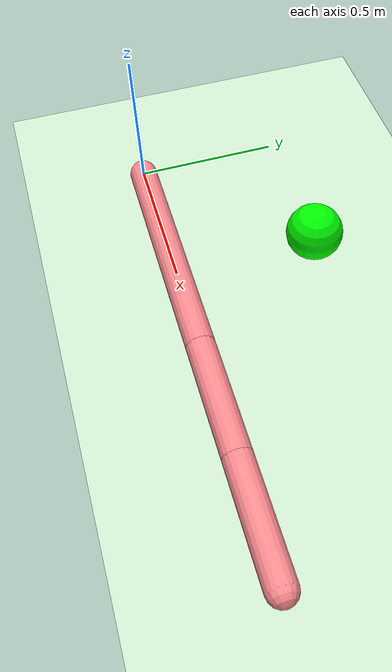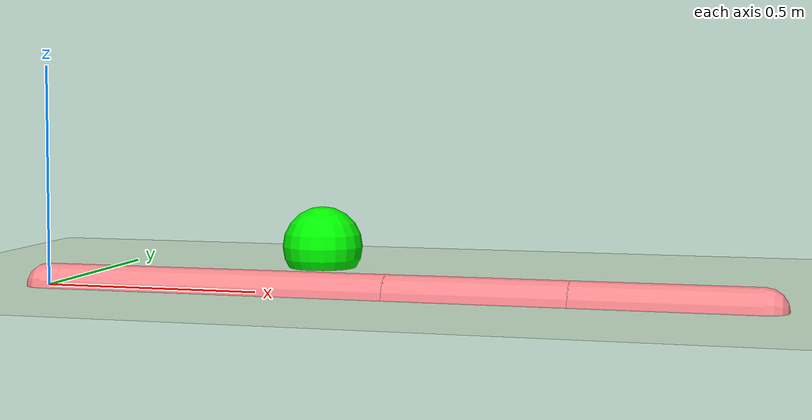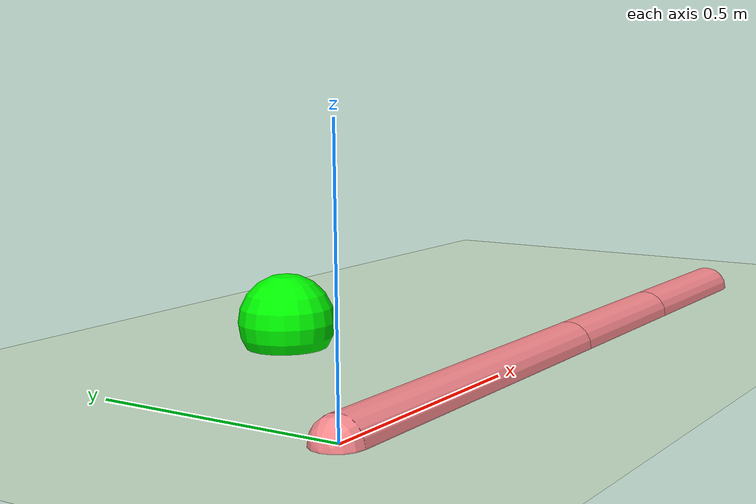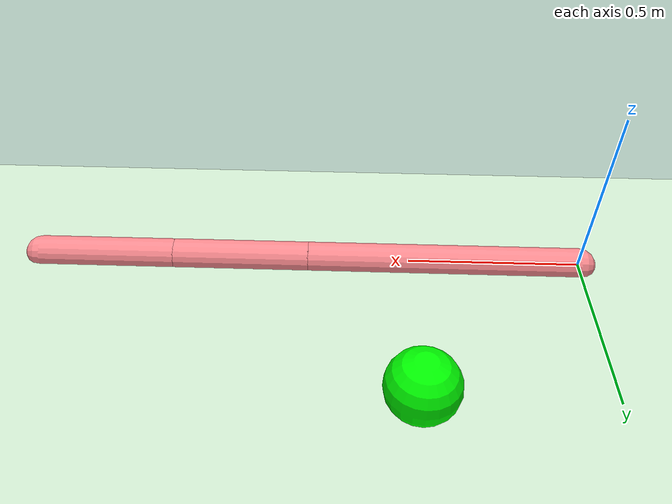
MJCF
<mujoco model="tool">
  <compiler angle="degree" coordinate="global" inertiafromgeom="true"/>
  <default>
    <geom conaffinity="1" condim="1" contype="1" margin="0.001" rgba=".98 .54 .56 1." solimp=".8 .8 .01" solref=".02 1"/>
    <motor ctrllimited="true" ctrlrange="-.4 .4"/>
  </default>
  <option integrator="RK4" timestep="0.002"/>
  <visual>
    <headlight ambient=".1 .1 .1" diffuse=".6 .6 .6" specular="0.3 0.3 0.3"/>
    <map znear=".01"/>
    <quality shadowsize="16384"/>
  </visual>
  <worldbody>
    <light cutoff="100" diffuse="1 1 1" dir="-1 0 -1.3" directional="true" exponent="1" pos="1 0 1.3" specular=".1 .1 .1" castshadow="true"/>
    <geom conaffinity="1" condim="3" name="floor" pos="0 0 0" rgba="0.8 0.9 0.8 1" size="200 200 .125" type="plane" material="grid_new"/>

    <body name="0" pos="0.4 0 1.0">
      <camera name="track" mode="trackcom" pos="0 -3 1" xyaxes="1 0 0 0 0 1"/>
      <joint armature="0" axis="0 0 1" damping="0" limited="false" name="0_joint" pos="0 0 0" stiffness="0" type="hinge"/>
      <geom friction="0.9" fromto="0 0 0 0.8 0 0" size="0.05" type="capsule"/>
      <body name="1" pos="1.0 0 0">
        <joint axis="0 0 1" name="1_joint" pos="0.8 0 0" range="-360 360" type="hinge"/>
        <geom friction="0.9" fromto="0.8 0 0 1.2 0 0" size="0.05" type="capsule"/>
        <body name="2" pos="1.4 0 0">
          <joint axis="0 0 1" name="2_joint" pos="1.2 0 0" range="-360 360" type="hinge"/>
          <geom friction="0.9" fromto="1.2 0 0 1.6 0 0" size="0.05" type="capsule"/>
        </body>
      </body>
    </body>

    <body name="obj_0" pos="0.5 0.5 0.05">
        <joint  name="3_joint" type="free" damping="0.01" pos="0 0 0" />
        <geom friction="0.9" size="0.1" type="sphere" pos="0.5 0.5 0.05" rgba="0.0 1.0 0.0 1.0" mass="0.5"/>
    </body>
  </worldbody>
  <actuator>
    <motor ctrllimited="true" ctrlrange="-50.0 50.0" gear="500" joint="0_joint" name="0_joint"/>
    <motor ctrllimited="true" ctrlrange="-5.0 5.0" gear="500" joint="1_joint" name="1_joint"/>
    <motor ctrllimited="true" ctrlrange="-1.0 1.0" gear="500" joint="2_joint" name="2_joint"/>

  </actuator>
  <asset>
    <texture type="skybox" builtin="gradient" rgb1=".4 .5 .6" rgb2="0 0 0" width="100" height="100"/>
    <texture builtin="flat" height="1278" mark="cross" markrgb="1 1 1" name="texgeom" random="0.01" rgb1="0.8 0.6 0.4" rgb2="0.8 0.6 0.4" type="cube" width="127"/>
    <texture builtin="checker" height="100" name="texplane" rgb1="0 0 0" rgb2="0.8 0.8 0.8" type="2d" width="100"/>
    <material name="MatPlane" reflectance="0.5" shininess="1" specular="1" texrepeat="60 60" texture="texplane"/>
    <material name="geom" texture="texgeom" texuniform="true"/>
    <texture name="grid_new" type="2d" builtin="checker" rgb1=".1 .3 .2" rgb2=".2 .4 .3" width="1000" height="1000" mark="none" markrgb=".8 .6 .4"/>
    <material name="grid_new" texture="grid_new" texrepeat="0.2 0.2" texuniform="true" reflectance=".2"/>
  </asset>
</mujoco>
